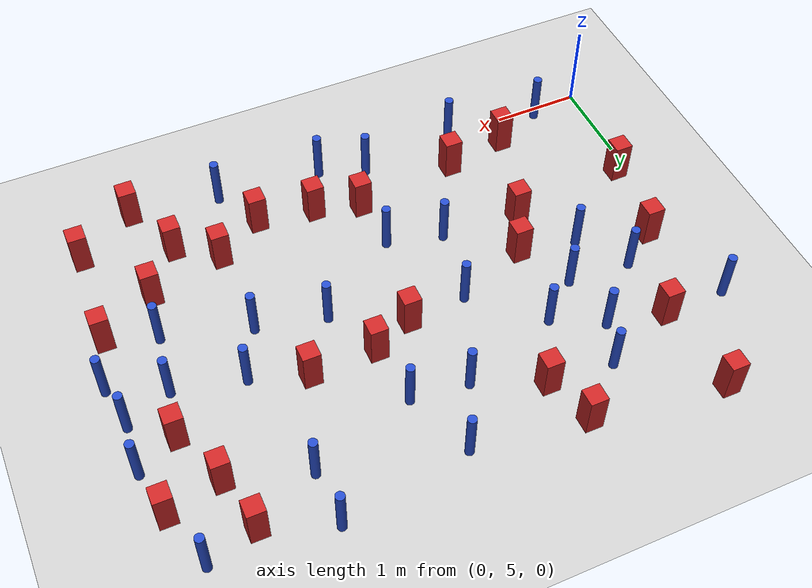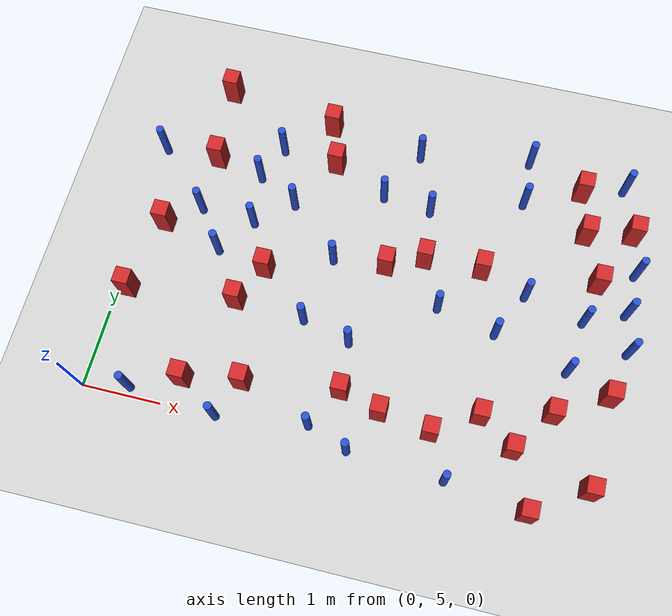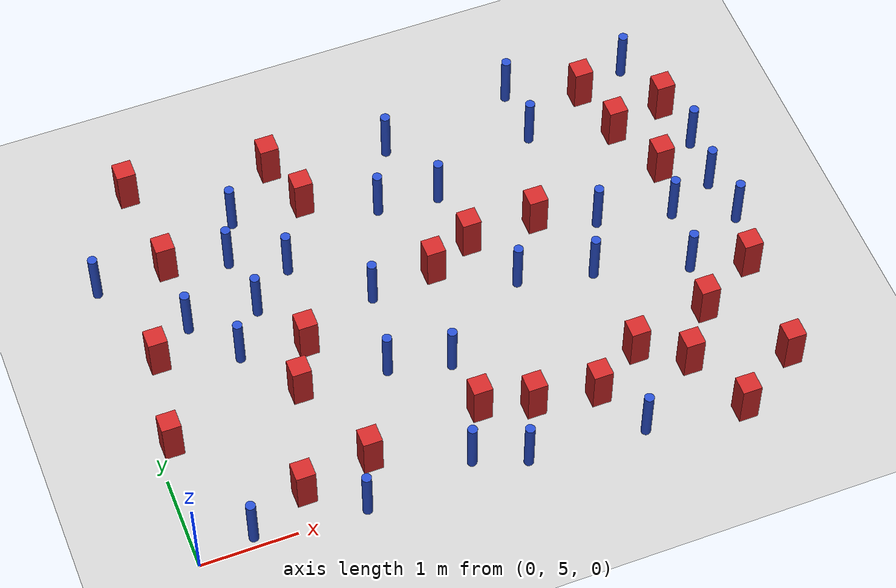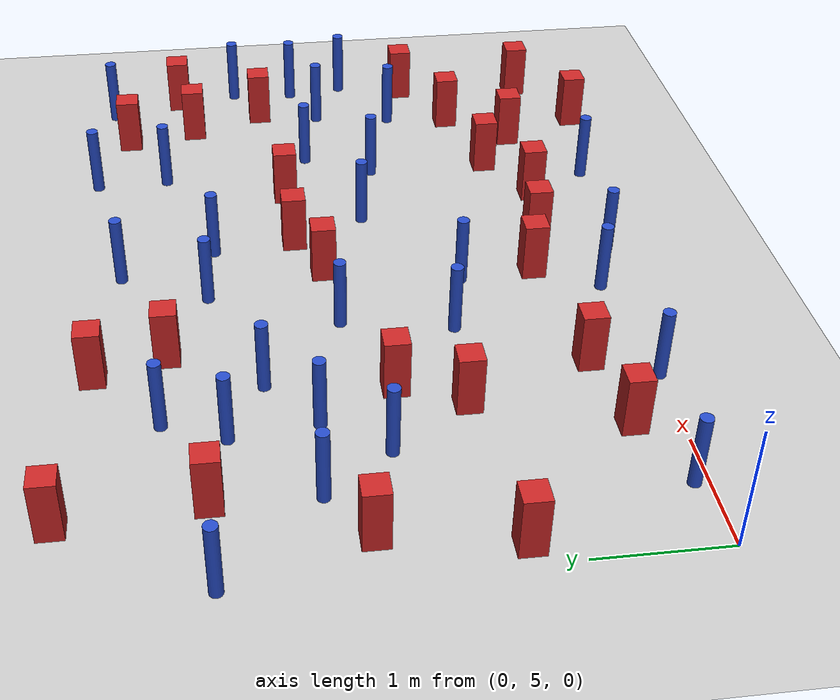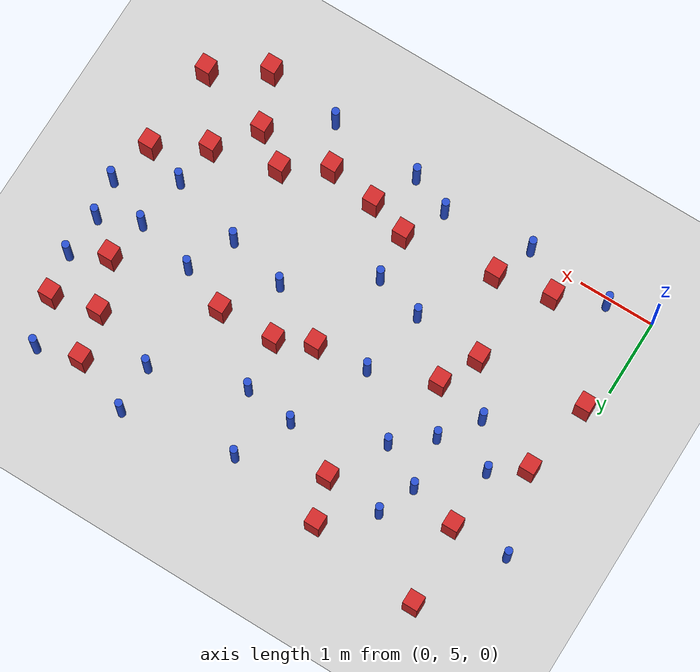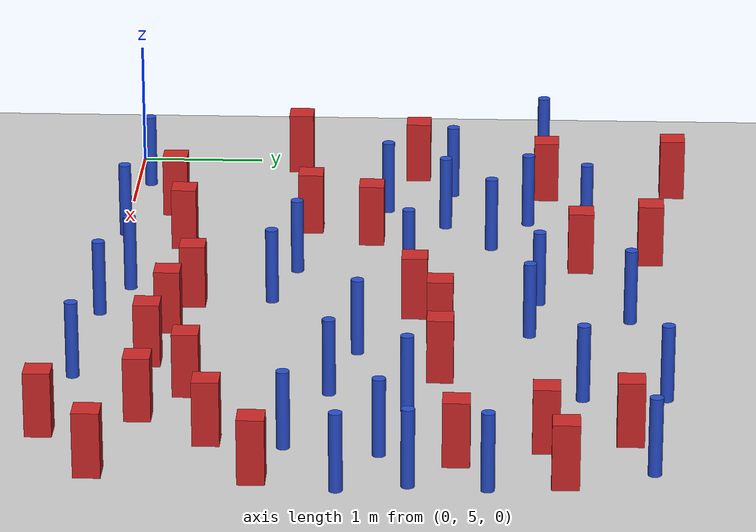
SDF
<sdf version="1.6">
 <world name="default">
  <model name="ground_plane">
   <static>1</static>
   <link name="link">
    <collision name="collision">
     <geometry><plane><normal>0 0 1</normal><size>100 100</size></plane></geometry>
     <surface><friction><ode><mu>100</mu><mu2>50</mu2></ode></friction></surface>
    </collision>
    <visual name="visual">
     <cast_shadows>0</cast_shadows>
     <geometry><plane><normal>0 0 1</normal><size>100 100</size></plane></geometry>
     <material>
      <ambient>1.0 1.0 1.0 1.0</ambient>
      <diffuse>0.8 0.8 0.8 1.0</diffuse>
      <specular>0.01 0.01 0.01 1.000000</specular>
     </material>
    </visual>
   </link>
  </model>
  <model name="square_post_obstacle6">
   <static>true</static>
   <pose>6.34076283947 8.5499948869 -6.11067671241e-07 -5.50515727128e-06 -8.79689657224e-07 2.37013304536e-05</pose>
   <link name="link">
    <pose>0 0 0.25 0 -0 0</pose>
    <inertial>
     <mass>100</mass>
     <inertia>
      <ixx>0.166667</ixx>
      <ixy>0</ixy>
      <ixz>0</ixz>
      <iyy>0.166667</iyy>
      <iyz>0</iyz>
      <izz>0.166667</izz>
     </inertia>
    </inertial>
    <collision name="collision"><geometry><box><size>.2 .2 .5</size></box></geometry></collision>
    <visual name="visual">
     <geometry><box><size>.2 .2 .5</size></box></geometry>
     <material>
      <script><name>Gazebo/Red</name><uri>file://media/materials/scripts/gazebo.material</uri></script>
     </material>
    </visual>
   </link>
  </model>
  <model name="pole_obstacle5">
   <static>true</static>
   <pose>0.745613405647 7.6392217286 -9.47619616065e-06 5.49618799737e-07 2.36310414065e-07 -1.55090534796e-07</pose>
   <link name="link">
    <pose>0 0 0.3 0 -0 0</pose>
    <inertial>
     <mass>1</mass>
     <inertia><ixx>0.145833</ixx><ixy>0</ixy><ixz>0</ixz><iyy>0.145833</iyy><iyz>0</iyz><izz>0.125</izz></inertia>
    </inertial>
    <collision name="collision">
     <geometry><cylinder><radius>0.05</radius><length>.6</length></cylinder></geometry>
    </collision>
    <visual name="visual">
     <geometry><cylinder><radius>0.05</radius><length>.6</length></cylinder></geometry>
     <material>
      <script><name>Gazebo/Blue</name><uri>file://media/materials/scripts/gazebo.material</uri></script>
     </material>
    </visual>
   </link>
  </model>
  <model name="square_post_obstacle11">
   <static>true</static>
   <pose>0.16159493465 6.35200790539 -6.11067671241e-07 -5.50515727128e-06 -8.79689657224e-07 2.37013304536e-05</pose>
   <link name="link">
    <pose>0 0 0.25 0 -0 0</pose>
    <inertial>
     <mass>100</mass>
     <inertia>
      <ixx>0.166667</ixx>
      <ixy>0</ixy>
      <ixz>0</ixz>
      <iyy>0.166667</iyy>
      <iyz>0</iyz>
      <izz>0.166667</izz>
     </inertia>
    </inertial>
    <collision name="collision"><geometry><box><size>.2 .2 .5</size></box></geometry></collision>
    <visual name="visual">
     <geometry><box><size>.2 .2 .5</size></box></geometry>
     <material>
      <script><name>Gazebo/Red</name><uri>file://media/materials/scripts/gazebo.material</uri></script>
     </material>
    </visual>
   </link>
  </model>
  <model name="square_post_obstacle12">
   <static>true</static>
   <pose>5.60025701304 9.02206502396 -6.11067671241e-07 -5.50515727128e-06 -8.79689657224e-07 2.37013304536e-05</pose>
   <link name="link">
    <pose>0 0 0.25 0 -0 0</pose>
    <inertial>
     <mass>100</mass>
     <inertia>
      <ixx>0.166667</ixx>
      <ixy>0</ixy>
      <ixz>0</ixz>
      <iyy>0.166667</iyy>
      <iyz>0</iyz>
      <izz>0.166667</izz>
     </inertia>
    </inertial>
    <collision name="collision"><geometry><box><size>.2 .2 .5</size></box></geometry></collision>
    <visual name="visual">
     <geometry><box><size>.2 .2 .5</size></box></geometry>
     <material>
      <script><name>Gazebo/Red</name><uri>file://media/materials/scripts/gazebo.material</uri></script>
     </material>
    </visual>
   </link>
  </model>
  <model name="square_post_obstacle30">
   <static>true</static>
   <pose>1.79112847933 7.00552808204 -6.11067671241e-07 -5.50515727128e-06 -8.79689657224e-07 2.37013304536e-05</pose>
   <link name="link">
    <pose>0 0 0.25 0 -0 0</pose>
    <inertial>
     <mass>100</mass>
     <inertia>
      <ixx>0.166667</ixx>
      <ixy>0</ixy>
      <ixz>0</ixz>
      <iyy>0.166667</iyy>
      <iyz>0</iyz>
      <izz>0.166667</izz>
     </inertia>
    </inertial>
    <collision name="collision"><geometry><box><size>.2 .2 .5</size></box></geometry></collision>
    <visual name="visual">
     <geometry><box><size>.2 .2 .5</size></box></geometry>
     <material>
      <script><name>Gazebo/Red</name><uri>file://media/materials/scripts/gazebo.material</uri></script>
     </material>
    </visual>
   </link>
  </model>
  <model name="pole_obstacle32">
   <static>true</static>
   <pose>3.39943327926 9.05926599301 -9.4761961606e-06 5.49618799729e-07 2.36310414e-07 -1.55090534824e-07</pose>
   <link name="link">
    <pose>0 0 0.3 0 -0 0</pose>
    <inertial>
     <mass>1</mass>
     <inertia><ixx>0.145833</ixx><ixy>0</ixy><ixz>0</ixz><iyy>0.145833</iyy><iyz>0</iyz><izz>0.125</izz></inertia>
    </inertial>
    <collision name="collision">
     <geometry><cylinder><radius>0.05</radius><length>.6</length></cylinder></geometry>
    </collision>
    <visual name="visual">
     <geometry><cylinder><radius>0.05</radius><length>.6</length></cylinder></geometry>
     <material>
      <script><name>Gazebo/Blue</name><uri>file://media/materials/scripts/gazebo.material</uri></script>
     </material>
    </visual>
   </link>
  </model>
  <model name="pole_obstacle33">
   <static>true</static>
   <pose>0.015821319736 8.38703752953 -9.47619616065e-06 5.49618799737e-07 2.36310414039e-07 -1.55090534813e-07</pose>
   <link name="link">
    <pose>0 0 0.3 0 -0 0</pose>
    <inertial>
     <mass>1</mass>
     <inertia><ixx>0.145833</ixx><ixy>0</ixy><ixz>0</ixz><iyy>0.145833</iyy><iyz>0</iyz><izz>0.125</izz></inertia>
    </inertial>
    <collision name="collision">
     <geometry><cylinder><radius>0.05</radius><length>.6</length></cylinder></geometry>
    </collision>
    <visual name="visual">
     <geometry><cylinder><radius>0.05</radius><length>.6</length></cylinder></geometry>
     <material>
      <script><name>Gazebo/Blue</name><uri>file://media/materials/scripts/gazebo.material</uri></script>
     </material>
    </visual>
   </link>
  </model>
  <model name="pole_obstacle34">
   <static>true</static>
   <pose>4.87713090371 8.68399019219 -9.47619616065e-06 5.49618799737e-07 2.36310414065e-07 -1.55090534796e-07</pose>
   <link name="link">
    <pose>0 0 0.3 0 -0 0</pose>
    <inertial>
     <mass>1</mass>
     <inertia><ixx>0.145833</ixx><ixy>0</ixy><ixz>0</ixz><iyy>0.145833</iyy><iyz>0</iyz><izz>0.125</izz></inertia>
    </inertial>
    <collision name="collision">
     <geometry><cylinder><radius>0.05</radius><length>.6</length></cylinder></geometry>
    </collision>
    <visual name="visual">
     <geometry><cylinder><radius>0.05</radius><length>.6</length></cylinder></geometry>
     <material>
      <script><name>Gazebo/Blue</name><uri>file://media/materials/scripts/gazebo.material</uri></script>
     </material>
    </visual>
   </link>
  </model>
  <model name="pole_obstacle44">
   <static>true</static>
   <pose>3.69394878229 8.28498594735 -9.4761961606e-06 5.49618799729e-07 2.36310414e-07 -1.55090534824e-07</pose>
   <link name="link">
    <pose>0 0 0.3 0 -0 0</pose>
    <inertial>
     <mass>1</mass>
     <inertia><ixx>0.145833</ixx><ixy>0</ixy><ixz>0</ixz><iyy>0.145833</iyy><iyz>0</iyz><izz>0.125</izz></inertia>
    </inertial>
    <collision name="collision">
     <geometry><cylinder><radius>0.05</radius><length>.6</length></cylinder></geometry>
    </collision>
    <visual name="visual">
     <geometry><cylinder><radius>0.05</radius><length>.6</length></cylinder></geometry>
     <material>
      <script><name>Gazebo/Blue</name><uri>file://media/materials/scripts/gazebo.material</uri></script>
     </material>
    </visual>
   </link>
  </model>
  <model name="square_post_obstacle44">
   <static>true</static>
   <pose>5.29365159109 5.43245693541 -6.11067671241e-07 -5.50515727128e-06 -8.79689657224e-07 2.37013304536e-05</pose>
   <link name="link">
    <pose>0 0 0.25 0 -0 0</pose>
    <inertial>
     <mass>100</mass>
     <inertia>
      <ixx>0.166667</ixx>
      <ixy>0</ixy>
      <ixz>0</ixz>
      <iyy>0.166667</iyy>
      <iyz>0</iyz>
      <izz>0.166667</izz>
     </inertia>
    </inertial>
    <collision name="collision"><geometry><box><size>.2 .2 .5</size></box></geometry></collision>
    <visual name="visual">
     <geometry><box><size>.2 .2 .5</size></box></geometry>
     <material>
      <script><name>Gazebo/Red</name><uri>file://media/materials/scripts/gazebo.material</uri></script>
     </material>
    </visual>
   </link>
  </model>
  <model name="pole_obstacle46">
   <static>true</static>
   <pose>6.15024839324 9.18393553257 -9.47619616065e-06 5.49618799737e-07 2.36310414065e-07 -1.55090534796e-07</pose>
   <link name="link">
    <pose>0 0 0.3 0 -0 0</pose>
    <inertial>
     <mass>1</mass>
     <inertia><ixx>0.145833</ixx><ixy>0</ixy><ixz>0</ixz><iyy>0.145833</iyy><iyz>0</iyz><izz>0.125</izz></inertia>
    </inertial>
    <collision name="collision">
     <geometry><cylinder><radius>0.05</radius><length>.6</length></cylinder></geometry>
    </collision>
    <visual name="visual">
     <geometry><cylinder><radius>0.05</radius><length>.6</length></cylinder></geometry>
     <material>
      <script><name>Gazebo/Blue</name><uri>file://media/materials/scripts/gazebo.material</uri></script>
     </material>
    </visual>
   </link>
  </model>
  <model name="square_post_obstacle50">
   <static>true</static>
   <pose>2.14917220712 9.23992868707 -6.11067671241e-07 -5.50515727128e-06 -8.79689657224e-07 2.37013304536e-05</pose>
   <link name="link">
    <pose>0 0 0.25 0 -0 0</pose>
    <inertial>
     <mass>100</mass>
     <inertia>
      <ixx>0.166667</ixx>
      <ixy>0</ixy>
      <ixz>0</ixz>
      <iyy>0.166667</iyy>
      <iyz>0</iyz>
      <izz>0.166667</izz>
     </inertia>
    </inertial>
    <collision name="collision"><geometry><box><size>.2 .2 .5</size></box></geometry></collision>
    <visual name="visual">
     <geometry><box><size>.2 .2 .5</size></box></geometry>
     <material>
      <script><name>Gazebo/Red</name><uri>file://media/materials/scripts/gazebo.material</uri></script>
     </material>
    </visual>
   </link>
  </model>
  <model name="square_post_obstacle57">
   <static>true</static>
   <pose>5.99296609151 7.77150757384 -6.11067671241e-07 -5.50515727128e-06 -8.79689657224e-07 2.37013304536e-05</pose>
   <link name="link">
    <pose>0 0 0.25 0 -0 0</pose>
    <inertial>
     <mass>100</mass>
     <inertia>
      <ixx>0.166667</ixx>
      <ixy>0</ixy>
      <ixz>0</ixz>
      <iyy>0.166667</iyy>
      <iyz>0</iyz>
      <izz>0.166667</izz>
     </inertia>
    </inertial>
    <collision name="collision"><geometry><box><size>.2 .2 .5</size></box></geometry></collision>
    <visual name="visual">
     <geometry><box><size>.2 .2 .5</size></box></geometry>
     <material>
      <script><name>Gazebo/Red</name><uri>file://media/materials/scripts/gazebo.material</uri></script>
     </material>
    </visual>
   </link>
  </model>
  <model name="pole_obstacle64">
   <static>true</static>
   <pose>2.61488511365 7.32648292355 -9.47619616065e-06 5.49618799738e-07 2.3631041406e-07 -1.55090534801e-07</pose>
   <link name="link">
    <pose>0 0 0.3 0 -0 0</pose>
    <inertial>
     <mass>1</mass>
     <inertia><ixx>0.145833</ixx><ixy>0</ixy><ixz>0</ixz><iyy>0.145833</iyy><iyz>0</iyz><izz>0.125</izz></inertia>
    </inertial>
    <collision name="collision">
     <geometry><cylinder><radius>0.05</radius><length>.6</length></cylinder></geometry>
    </collision>
    <visual name="visual">
     <geometry><cylinder><radius>0.05</radius><length>.6</length></cylinder></geometry>
     <material>
      <script><name>Gazebo/Blue</name><uri>file://media/materials/scripts/gazebo.material</uri></script>
     </material>
    </visual>
   </link>
  </model>
  <model name="pole_obstacle67">
   <static>true</static>
   <pose>0.584177188709 5.10836719487 -9.47619616065e-06 5.49618799737e-07 2.36310414065e-07 -1.55090534796e-07</pose>
   <link name="link">
    <pose>0 0 0.3 0 -0 0</pose>
    <inertial>
     <mass>1</mass>
     <inertia><ixx>0.145833</ixx><ixy>0</ixy><ixz>0</ixz><iyy>0.145833</iyy><iyz>0</iyz><izz>0.125</izz></inertia>
    </inertial>
    <collision name="collision">
     <geometry><cylinder><radius>0.05</radius><length>.6</length></cylinder></geometry>
    </collision>
    <visual name="visual">
     <geometry><cylinder><radius>0.05</radius><length>.6</length></cylinder></geometry>
     <material>
      <script><name>Gazebo/Blue</name><uri>file://media/materials/scripts/gazebo.material</uri></script>
     </material>
    </visual>
   </link>
  </model>
  <model name="square_post_obstacle74">
   <static>true</static>
   <pose>4.29895245596 5.41531932441 -6.11067671241e-07 -5.50515727128e-06 -8.79689657224e-07 2.37013304536e-05</pose>
   <link name="link">
    <pose>0 0 0.25 0 -0 0</pose>
    <inertial>
     <mass>100</mass>
     <inertia>
      <ixx>0.166667</ixx>
      <ixy>0</ixy>
      <ixz>0</ixz>
      <iyy>0.166667</iyy>
      <iyz>0</iyz>
      <izz>0.166667</izz>
     </inertia>
    </inertial>
    <collision name="collision"><geometry><box><size>.2 .2 .5</size></box></geometry></collision>
    <visual name="visual">
     <geometry><box><size>.2 .2 .5</size></box></geometry>
     <material>
      <script><name>Gazebo/Red</name><uri>file://media/materials/scripts/gazebo.material</uri></script>
     </material>
    </visual>
   </link>
  </model>
  <model name="square_post_obstacle81">
   <static>true</static>
   <pose>4.84512414721 5.7495159852 -6.11067671241e-07 -5.50515727128e-06 -8.79689657224e-07 2.37013304536e-05</pose>
   <link name="link">
    <pose>0 0 0.25 0 -0 0</pose>
    <inertial>
     <mass>100</mass>
     <inertia>
      <ixx>0.166667</ixx>
      <ixy>0</ixy>
      <ixz>0</ixz>
      <iyy>0.166667</iyy>
      <iyz>0</iyz>
      <izz>0.166667</izz>
     </inertia>
    </inertial>
    <collision name="collision"><geometry><box><size>.2 .2 .5</size></box></geometry></collision>
    <visual name="visual">
     <geometry><box><size>.2 .2 .5</size></box></geometry>
     <material>
      <script><name>Gazebo/Red</name><uri>file://media/materials/scripts/gazebo.material</uri></script>
     </material>
    </visual>
   </link>
  </model>
  <model name="pole_obstacle94">
   <static>true</static>
   <pose>4.06358419919 6.98536074071 -9.47619616065e-06 5.49618799737e-07 2.36310414037e-07 -1.55090534814e-07</pose>
   <link name="link">
    <pose>0 0 0.3 0 -0 0</pose>
    <inertial>
     <mass>1</mass>
     <inertia><ixx>0.145833</ixx><ixy>0</ixy><ixz>0</ixz><iyy>0.145833</iyy><iyz>0</iyz><izz>0.125</izz></inertia>
    </inertial>
    <collision name="collision">
     <geometry><cylinder><radius>0.05</radius><length>.6</length></cylinder></geometry>
    </collision>
    <visual name="visual">
     <geometry><cylinder><radius>0.05</radius><length>.6</length></cylinder></geometry>
     <material>
      <script><name>Gazebo/Blue</name><uri>file://media/materials/scripts/gazebo.material</uri></script>
     </material>
    </visual>
   </link>
  </model>
  <model name="pole_obstacle98">
   <static>true</static>
   <pose>4.83447140168 6.80653209014 -9.47619616065e-06 5.49618799737e-07 2.36310414037e-07 -1.55090534814e-07</pose>
   <link name="link">
    <pose>0 0 0.3 0 -0 0</pose>
    <inertial>
     <mass>1</mass>
     <inertia><ixx>0.145833</ixx><ixy>0</ixy><ixz>0</ixz><iyy>0.145833</iyy><iyz>0</iyz><izz>0.125</izz></inertia>
    </inertial>
    <collision name="collision">
     <geometry><cylinder><radius>0.05</radius><length>.6</length></cylinder></geometry>
    </collision>
    <visual name="visual">
     <geometry><cylinder><radius>0.05</radius><length>.6</length></cylinder></geometry>
     <material>
      <script><name>Gazebo/Blue</name><uri>file://media/materials/scripts/gazebo.material</uri></script>
     </material>
    </visual>
   </link>
  </model>
  <model name="pole_obstacle104">
   <static>true</static>
   <pose>1.12483648178 7.11594691428 -9.47619616065e-06 5.49618799737e-07 2.36310414061e-07 -1.550905348e-07</pose>
   <link name="link">
    <pose>0 0 0.3 0 -0 0</pose>
    <inertial>
     <mass>1</mass>
     <inertia><ixx>0.145833</ixx><ixy>0</ixy><ixz>0</ixz><iyy>0.145833</iyy><iyz>0</iyz><izz>0.125</izz></inertia>
    </inertial>
    <collision name="collision">
     <geometry><cylinder><radius>0.05</radius><length>.6</length></cylinder></geometry>
    </collision>
    <visual name="visual">
     <geometry><cylinder><radius>0.05</radius><length>.6</length></cylinder></geometry>
     <material>
      <script><name>Gazebo/Blue</name><uri>file://media/materials/scripts/gazebo.material</uri></script>
     </material>
    </visual>
   </link>
  </model>
  <model name="square_post_obstacle96">
   <static>true</static>
   <pose>1.54952865831 6.50310017819 -6.11067671241e-07 -5.50515727128e-06 -8.79689657224e-07 2.37013304536e-05</pose>
   <link name="link">
    <pose>0 0 0.25 0 -0 0</pose>
    <inertial>
     <mass>100</mass>
     <inertia>
      <ixx>0.166667</ixx>
      <ixy>0</ixy>
      <ixz>0</ixz>
      <iyy>0.166667</iyy>
      <iyz>0</iyz>
      <izz>0.166667</izz>
     </inertia>
    </inertial>
    <collision name="collision"><geometry><box><size>.2 .2 .5</size></box></geometry></collision>
    <visual name="visual">
     <geometry><box><size>.2 .2 .5</size></box></geometry>
     <material>
      <script><name>Gazebo/Red</name><uri>file://media/materials/scripts/gazebo.material</uri></script>
     </material>
    </visual>
   </link>
  </model>
  <model name="pole_obstacle111">
   <static>true</static>
   <pose>5.11794263537 7.39386304942 -9.47619616065e-06 5.49618799737e-07 2.36310414037e-07 -1.55090534814e-07</pose>
   <link name="link">
    <pose>0 0 0.3 0 -0 0</pose>
    <inertial>
     <mass>1</mass>
     <inertia><ixx>0.145833</ixx><ixy>0</ixy><ixz>0</ixz><iyy>0.145833</iyy><iyz>0</iyz><izz>0.125</izz></inertia>
    </inertial>
    <collision name="collision">
     <geometry><cylinder><radius>0.05</radius><length>.6</length></cylinder></geometry>
    </collision>
    <visual name="visual">
     <geometry><cylinder><radius>0.05</radius><length>.6</length></cylinder></geometry>
     <material>
      <script><name>Gazebo/Blue</name><uri>file://media/materials/scripts/gazebo.material</uri></script>
     </material>
    </visual>
   </link>
  </model>
  <model name="pole_obstacle115">
   <static>true</static>
   <pose>1.38260173117 8.26328181564 -9.47619616065e-06 5.49618799737e-07 2.36310414046e-07 -1.55090534809e-07</pose>
   <link name="link">
    <pose>0 0 0.3 0 -0 0</pose>
    <inertial>
     <mass>1</mass>
     <inertia><ixx>0.145833</ixx><ixy>0</ixy><ixz>0</ixz><iyy>0.145833</iyy><iyz>0</iyz><izz>0.125</izz></inertia>
    </inertial>
    <collision name="collision">
     <geometry><cylinder><radius>0.05</radius><length>.6</length></cylinder></geometry>
    </collision>
    <visual name="visual">
     <geometry><cylinder><radius>0.05</radius><length>.6</length></cylinder></geometry>
     <material>
      <script><name>Gazebo/Blue</name><uri>file://media/materials/scripts/gazebo.material</uri></script>
     </material>
    </visual>
   </link>
  </model>
  <model name="square_post_obstacle102">
   <static>true</static>
   <pose>0.753346790967 8.40954275333 -6.11067671241e-07 -5.50515727128e-06 -8.79689657224e-07 2.37013304536e-05</pose>
   <link name="link">
    <pose>0 0 0.25 0 -0 0</pose>
    <inertial>
     <mass>100</mass>
     <inertia>
      <ixx>0.166667</ixx>
      <ixy>0</ixy>
      <ixz>0</ixz>
      <iyy>0.166667</iyy>
      <iyz>0</iyz>
      <izz>0.166667</izz>
     </inertia>
    </inertial>
    <collision name="collision"><geometry><box><size>.2 .2 .5</size></box></geometry></collision>
    <visual name="visual">
     <geometry><box><size>.2 .2 .5</size></box></geometry>
     <material>
      <script><name>Gazebo/Red</name><uri>file://media/materials/scripts/gazebo.material</uri></script>
     </material>
    </visual>
   </link>
  </model>
  <model name="square_post_obstacle105">
   <static>true</static>
   <pose>6.26525733336 5.16273116097 -6.11067671241e-07 -5.50515727128e-06 -8.79689657224e-07 2.37013304536e-05</pose>
   <link name="link">
    <pose>0 0 0.25 0 -0 0</pose>
    <inertial>
     <mass>100</mass>
     <inertia>
      <ixx>0.166667</ixx>
      <ixy>0</ixy>
      <ixz>0</ixz>
      <iyy>0.166667</iyy>
      <iyz>0</iyz>
      <izz>0.166667</izz>
     </inertia>
    </inertial>
    <collision name="collision"><geometry><box><size>.2 .2 .5</size></box></geometry></collision>
    <visual name="visual">
     <geometry><box><size>.2 .2 .5</size></box></geometry>
     <material>
      <script><name>Gazebo/Red</name><uri>file://media/materials/scripts/gazebo.material</uri></script>
     </material>
    </visual>
   </link>
  </model>
  <model name="square_post_obstacle106">
   <static>true</static>
   <pose>3.13021972057 5.66644149737 -6.11067671241e-07 -5.50515727128e-06 -8.79689657224e-07 2.37013304536e-05</pose>
   <link name="link">
    <pose>0 0 0.25 0 -0 0</pose>
    <inertial>
     <mass>100</mass>
     <inertia>
      <ixx>0.166667</ixx>
      <ixy>0</ixy>
      <ixz>0</ixz>
      <iyy>0.166667</iyy>
      <iyz>0</iyz>
      <izz>0.166667</izz>
     </inertia>
    </inertial>
    <collision name="collision"><geometry><box><size>.2 .2 .5</size></box></geometry></collision>
    <visual name="visual">
     <geometry><box><size>.2 .2 .5</size></box></geometry>
     <material>
      <script><name>Gazebo/Red</name><uri>file://media/materials/scripts/gazebo.material</uri></script>
     </material>
    </visual>
   </link>
  </model>
  <model name="square_post_obstacle112">
   <static>true</static>
   <pose>6.3389014881 6.33179369499 -6.11067671241e-07 -5.50515727128e-06 -8.79689657224e-07 2.37013304536e-05</pose>
   <link name="link">
    <pose>0 0 0.25 0 -0 0</pose>
    <inertial>
     <mass>100</mass>
     <inertia>
      <ixx>0.166667</ixx>
      <ixy>0</ixy>
      <ixz>0</ixz>
      <iyy>0.166667</iyy>
      <iyz>0</iyz>
      <izz>0.166667</izz>
     </inertia>
    </inertial>
    <collision name="collision"><geometry><box><size>.2 .2 .5</size></box></geometry></collision>
    <visual name="visual">
     <geometry><box><size>.2 .2 .5</size></box></geometry>
     <material>
      <script><name>Gazebo/Red</name><uri>file://media/materials/scripts/gazebo.material</uri></script>
     </material>
    </visual>
   </link>
  </model>
  <model name="pole_obstacle139">
   <static>true</static>
   <pose>1.71141079749 5.0033650352 -9.47619616065e-06 5.49618799737e-07 2.36310414061e-07 -1.550905348e-07</pose>
   <link name="link">
    <pose>0 0 0.3 0 -0 0</pose>
    <inertial>
     <mass>1</mass>
     <inertia><ixx>0.145833</ixx><ixy>0</ixy><ixz>0</ixz><iyy>0.145833</iyy><iyz>0</iyz><izz>0.125</izz></inertia>
    </inertial>
    <collision name="collision">
     <geometry><cylinder><radius>0.05</radius><length>.6</length></cylinder></geometry>
    </collision>
    <visual name="visual">
     <geometry><cylinder><radius>0.05</radius><length>.6</length></cylinder></geometry>
     <material>
      <script><name>Gazebo/Blue</name><uri>file://media/materials/scripts/gazebo.material</uri></script>
     </material>
    </visual>
   </link>
  </model>
  <model name="pole_obstacle141">
   <static>true</static>
   <pose>3.05214723601 8.35594033909 -9.4761961606e-06 5.49618799729e-07 2.36310414e-07 -1.55090534824e-07</pose>
   <link name="link">
    <pose>0 0 0.3 0 -0 0</pose>
    <inertial>
     <mass>1</mass>
     <inertia><ixx>0.145833</ixx><ixy>0</ixy><ixz>0</ixz><iyy>0.145833</iyy><iyz>0</iyz><izz>0.125</izz></inertia>
    </inertial>
    <collision name="collision">
     <geometry><cylinder><radius>0.05</radius><length>.6</length></cylinder></geometry>
    </collision>
    <visual name="visual">
     <geometry><cylinder><radius>0.05</radius><length>.6</length></cylinder></geometry>
     <material>
      <script><name>Gazebo/Blue</name><uri>file://media/materials/scripts/gazebo.material</uri></script>
     </material>
    </visual>
   </link>
  </model>
  <model name="square_post_obstacle127">
   <static>true</static>
   <pose>3.64627798604 5.51369097277 -6.11067671241e-07 -5.50515727128e-06 -8.79689657224e-07 2.37013304536e-05</pose>
   <link name="link">
    <pose>0 0 0.25 0 -0 0</pose>
    <inertial>
     <mass>100</mass>
     <inertia>
      <ixx>0.166667</ixx>
      <ixy>0</ixy>
      <ixz>0</ixz>
      <iyy>0.166667</iyy>
      <iyz>0</iyz>
      <izz>0.166667</izz>
     </inertia>
    </inertial>
    <collision name="collision"><geometry><box><size>.2 .2 .5</size></box></geometry></collision>
    <visual name="visual">
     <geometry><box><size>.2 .2 .5</size></box></geometry>
     <material>
      <script><name>Gazebo/Red</name><uri>file://media/materials/scripts/gazebo.material</uri></script>
     </material>
    </visual>
   </link>
  </model>
  <model name="square_post_obstacle129">
   <static>true</static>
   <pose>1.92116880631 5.50191823583 -6.11067671241e-07 -5.50515727128e-06 -8.79689657224e-07 2.37013304536e-05</pose>
   <link name="link">
    <pose>0 0 0.25 0 -0 0</pose>
    <inertial>
     <mass>100</mass>
     <inertia>
      <ixx>0.166667</ixx>
      <ixy>0</ixy>
      <ixz>0</ixz>
      <iyy>0.166667</iyy>
      <iyz>0</iyz>
      <izz>0.166667</izz>
     </inertia>
    </inertial>
    <collision name="collision"><geometry><box><size>.2 .2 .5</size></box></geometry></collision>
    <visual name="visual">
     <geometry><box><size>.2 .2 .5</size></box></geometry>
     <material>
      <script><name>Gazebo/Red</name><uri>file://media/materials/scripts/gazebo.material</uri></script>
     </material>
    </visual>
   </link>
  </model>
  <model name="square_post_obstacle130">
   <static>true</static>
   <pose>4.5121969407 7.62203635582 -6.11067671241e-07 -5.50515727128e-06 -8.79689657224e-07 2.37013304536e-05</pose>
   <link name="link">
    <pose>0 0 0.25 0 -0 0</pose>
    <inertial>
     <mass>100</mass>
     <inertia>
      <ixx>0.166667</ixx>
      <ixy>0</ixy>
      <ixz>0</ixz>
      <iyy>0.166667</iyy>
      <iyz>0</iyz>
      <izz>0.166667</izz>
     </inertia>
    </inertial>
    <collision name="collision"><geometry><box><size>.2 .2 .5</size></box></geometry></collision>
    <visual name="visual">
     <geometry><box><size>.2 .2 .5</size></box></geometry>
     <material>
      <script><name>Gazebo/Red</name><uri>file://media/materials/scripts/gazebo.material</uri></script>
     </material>
    </visual>
   </link>
  </model>
  <model name="square_post_obstacle135">
   <static>true</static>
   <pose>3.3008069111 7.39525696884 -6.11067671241e-07 -5.50515727128e-06 -8.79689657224e-07 2.37013304536e-05</pose>
   <link name="link">
    <pose>0 0 0.25 0 -0 0</pose>
    <inertial>
     <mass>100</mass>
     <inertia>
      <ixx>0.166667</ixx>
      <ixy>0</ixy>
      <ixz>0</ixz>
      <iyy>0.166667</iyy>
      <iyz>0</iyz>
      <izz>0.166667</izz>
     </inertia>
    </inertial>
    <collision name="collision"><geometry><box><size>.2 .2 .5</size></box></geometry></collision>
    <visual name="visual">
     <geometry><box><size>.2 .2 .5</size></box></geometry>
     <material>
      <script><name>Gazebo/Red</name><uri>file://media/materials/scripts/gazebo.material</uri></script>
     </material>
    </visual>
   </link>
  </model>
  <model name="pole_obstacle152">
   <static>true</static>
   <pose>6.4070583276 7.43870535219 -9.47619616065e-06 5.49618799737e-07 2.36310414037e-07 -1.55090534814e-07</pose>
   <link name="link">
    <pose>0 0 0.3 0 -0 0</pose>
    <inertial>
     <mass>1</mass>
     <inertia><ixx>0.145833</ixx><ixy>0</ixy><ixz>0</ixz><iyy>0.145833</iyy><iyz>0</iyz><izz>0.125</izz></inertia>
    </inertial>
    <collision name="collision">
     <geometry><cylinder><radius>0.05</radius><length>.6</length></cylinder></geometry>
    </collision>
    <visual name="visual">
     <geometry><cylinder><radius>0.05</radius><length>.6</length></cylinder></geometry>
     <material>
      <script><name>Gazebo/Blue</name><uri>file://media/materials/scripts/gazebo.material</uri></script>
     </material>
    </visual>
   </link>
  </model>
  <model name="square_post_obstacle145">
   <static>true</static>
   <pose>1.19332104323 5.37194114232 -6.11067671241e-07 -5.50515727128e-06 -8.79689657224e-07 2.37013304536e-05</pose>
   <link name="link">
    <pose>0 0 0.25 0 -0 0</pose>
    <inertial>
     <mass>100</mass>
     <inertia>
      <ixx>0.166667</ixx>
      <ixy>0</ixy>
      <ixz>0</ixz>
      <iyy>0.166667</iyy>
      <iyz>0</iyz>
      <izz>0.166667</izz>
     </inertia>
    </inertial>
    <collision name="collision"><geometry><box><size>.2 .2 .5</size></box></geometry></collision>
    <visual name="visual">
     <geometry><box><size>.2 .2 .5</size></box></geometry>
     <material>
      <script><name>Gazebo/Red</name><uri>file://media/materials/scripts/gazebo.material</uri></script>
     </material>
    </visual>
   </link>
  </model>
  <model name="square_post_obstacle158">
   <static>true</static>
   <pose>0.337536891399 7.34308555127 -6.11067671241e-07 -5.50515727128e-06 -8.79689657224e-07 2.37013304536e-05</pose>
   <link name="link">
    <pose>0 0 0.25 0 -0 0</pose>
    <inertial>
     <mass>100</mass>
     <inertia>
      <ixx>0.166667</ixx>
      <ixy>0</ixy>
      <ixz>0</ixz>
      <iyy>0.166667</iyy>
      <iyz>0</iyz>
      <izz>0.166667</izz>
     </inertia>
    </inertial>
    <collision name="collision"><geometry><box><size>.2 .2 .5</size></box></geometry></collision>
    <visual name="visual">
     <geometry><box><size>.2 .2 .5</size></box></geometry>
     <material>
      <script><name>Gazebo/Red</name><uri>file://media/materials/scripts/gazebo.material</uri></script>
     </material>
    </visual>
   </link>
  </model>
  <model name="square_post_obstacle168">
   <static>true</static>
   <pose>5.69913256489 5.96470200196 -6.11067671241e-07 -5.50515727128e-06 -8.79689657224e-07 2.37013304536e-05</pose>
   <link name="link">
    <pose>0 0 0.25 0 -0 0</pose>
    <inertial>
     <mass>100</mass>
     <inertia>
      <ixx>0.166667</ixx>
      <ixy>0</ixy>
      <ixz>0</ixz>
      <iyy>0.166667</iyy>
      <iyz>0</iyz>
      <izz>0.166667</izz>
     </inertia>
    </inertial>
    <collision name="collision"><geometry><box><size>.2 .2 .5</size></box></geometry></collision>
    <visual name="visual">
     <geometry><box><size>.2 .2 .5</size></box></geometry>
     <material>
      <script><name>Gazebo/Red</name><uri>file://media/materials/scripts/gazebo.material</uri></script>
     </material>
    </visual>
   </link>
  </model>
  <model name="pole_obstacle182">
   <static>true</static>
   <pose>5.79089724204 6.52319174007 -9.47619616065e-06 5.49618799737e-07 2.36310414037e-07 -1.55090534814e-07</pose>
   <link name="link">
    <pose>0 0 0.3 0 -0 0</pose>
    <inertial>
     <mass>1</mass>
     <inertia><ixx>0.145833</ixx><ixy>0</ixy><ixz>0</ixz><iyy>0.145833</iyy><iyz>0</iyz><izz>0.125</izz></inertia>
    </inertial>
    <collision name="collision">
     <geometry><cylinder><radius>0.05</radius><length>.6</length></cylinder></geometry>
    </collision>
    <visual name="visual">
     <geometry><cylinder><radius>0.05</radius><length>.6</length></cylinder></geometry>
     <material>
      <script><name>Gazebo/Blue</name><uri>file://media/materials/scripts/gazebo.material</uri></script>
     </material>
    </visual>
   </link>
  </model>
  <model name="pole_obstacle183">
   <static>true</static>
   <pose>2.85007016911 5.14929003676 -9.47619616065e-06 5.49618799738e-07 2.3631041406e-07 -1.55090534801e-07</pose>
   <link name="link">
    <pose>0 0 0.3 0 -0 0</pose>
    <inertial>
     <mass>1</mass>
     <inertia><ixx>0.145833</ixx><ixy>0</ixy><ixz>0</ixz><iyy>0.145833</iyy><iyz>0</iyz><izz>0.125</izz></inertia>
    </inertial>
    <collision name="collision">
     <geometry><cylinder><radius>0.05</radius><length>.6</length></cylinder></geometry>
    </collision>
    <visual name="visual">
     <geometry><cylinder><radius>0.05</radius><length>.6</length></cylinder></geometry>
     <material>
      <script><name>Gazebo/Blue</name><uri>file://media/materials/scripts/gazebo.material</uri></script>
     </material>
    </visual>
   </link>
  </model>
  <model name="square_post_obstacle175">
   <static>true</static>
   <pose>5.73870534506 8.41274667154 -6.11067671241e-07 -5.50515727128e-06 -8.79689657224e-07 2.37013304536e-05</pose>
   <link name="link">
    <pose>0 0 0.25 0 -0 0</pose>
    <inertial>
     <mass>100</mass>
     <inertia>
      <ixx>0.166667</ixx>
      <ixy>0</ixy>
      <ixz>0</ixz>
      <iyy>0.166667</iyy>
      <iyz>0</iyz>
      <izz>0.166667</izz>
     </inertia>
    </inertial>
    <collision name="collision"><geometry><box><size>.2 .2 .5</size></box></geometry></collision>
    <visual name="visual">
     <geometry><box><size>.2 .2 .5</size></box></geometry>
     <material>
      <script><name>Gazebo/Red</name><uri>file://media/materials/scripts/gazebo.material</uri></script>
     </material>
    </visual>
   </link>
  </model>
  <model name="square_post_obstacle182">
   <static>true</static>
   <pose>3.7673544865 7.6019083861 -6.11067671241e-07 -5.50515727128e-06 -8.79689657224e-07 2.37013304536e-05</pose>
   <link name="link">
    <pose>0 0 0.25 0 -0 0</pose>
    <inertial>
     <mass>100</mass>
     <inertia>
      <ixx>0.166667</ixx>
      <ixy>0</ixy>
      <ixz>0</ixz>
      <iyy>0.166667</iyy>
      <iyz>0</iyz>
      <izz>0.166667</izz>
     </inertia>
    </inertial>
    <collision name="collision"><geometry><box><size>.2 .2 .5</size></box></geometry></collision>
    <visual name="visual">
     <geometry><box><size>.2 .2 .5</size></box></geometry>
     <material>
      <script><name>Gazebo/Red</name><uri>file://media/materials/scripts/gazebo.material</uri></script>
     </material>
    </visual>
   </link>
  </model>
  <model name="square_post_obstacle184">
   <static>true</static>
   <pose>2.32748396425 8.68462599959 -6.11067671241e-07 -5.50515727128e-06 -8.79689657224e-07 2.37013304536e-05</pose>
   <link name="link">
    <pose>0 0 0.25 0 -0 0</pose>
    <inertial>
     <mass>100</mass>
     <inertia>
      <ixx>0.166667</ixx>
      <ixy>0</ixy>
      <ixz>0</ixz>
      <iyy>0.166667</iyy>
      <iyz>0</iyz>
      <izz>0.166667</izz>
     </inertia>
    </inertial>
    <collision name="collision"><geometry><box><size>.2 .2 .5</size></box></geometry></collision>
    <visual name="visual">
     <geometry><box><size>.2 .2 .5</size></box></geometry>
     <material>
      <script><name>Gazebo/Red</name><uri>file://media/materials/scripts/gazebo.material</uri></script>
     </material>
    </visual>
   </link>
  </model>
  <model name="square_post_obstacle186">
   <static>true</static>
   <pose>0.662531338871 9.45037625168 -6.11067671241e-07 -5.50515727128e-06 -8.79689657224e-07 2.37013304536e-05</pose>
   <link name="link">
    <pose>0 0 0.25 0 -0 0</pose>
    <inertial>
     <mass>100</mass>
     <inertia>
      <ixx>0.166667</ixx>
      <ixy>0</ixy>
      <ixz>0</ixz>
      <iyy>0.166667</iyy>
      <iyz>0</iyz>
      <izz>0.166667</izz>
     </inertia>
    </inertial>
    <collision name="collision"><geometry><box><size>.2 .2 .5</size></box></geometry></collision>
    <visual name="visual">
     <geometry><box><size>.2 .2 .5</size></box></geometry>
     <material>
      <script><name>Gazebo/Red</name><uri>file://media/materials/scripts/gazebo.material</uri></script>
     </material>
    </visual>
   </link>
  </model>
  <model name="square_post_obstacle189">
   <static>true</static>
   <pose>5.58690164041 4.73996823971 -6.11067671241e-07 -5.50515727128e-06 -8.79689657224e-07 2.37013304536e-05</pose>
   <link name="link">
    <pose>0 0 0.25 0 -0 0</pose>
    <inertial>
     <mass>100</mass>
     <inertia>
      <ixx>0.166667</ixx>
      <ixy>0</ixy>
      <ixz>0</ixz>
      <iyy>0.166667</iyy>
      <iyz>0</iyz>
      <izz>0.166667</izz>
     </inertia>
    </inertial>
    <collision name="collision"><geometry><box><size>.2 .2 .5</size></box></geometry></collision>
    <visual name="visual">
     <geometry><box><size>.2 .2 .5</size></box></geometry>
     <material>
      <script><name>Gazebo/Red</name><uri>file://media/materials/scripts/gazebo.material</uri></script>
     </material>
    </visual>
   </link>
  </model>
  <model name="pole_obstacle195">
   <static>true</static>
   <pose>1.92337685009 7.9709599667 -9.47619616065e-06 5.49618799737e-07 2.36310414056e-07 -1.55090534802e-07</pose>
   <link name="link">
    <pose>0 0 0.3 0 -0 0</pose>
    <inertial>
     <mass>1</mass>
     <inertia><ixx>0.145833</ixx><ixy>0</ixy><ixz>0</ixz><iyy>0.145833</iyy><iyz>0</iyz><izz>0.125</izz></inertia>
    </inertial>
    <collision name="collision">
     <geometry><cylinder><radius>0.05</radius><length>.6</length></cylinder></geometry>
    </collision>
    <visual name="visual">
     <geometry><cylinder><radius>0.05</radius><length>.6</length></cylinder></geometry>
     <material>
      <script><name>Gazebo/Blue</name><uri>file://media/materials/scripts/gazebo.material</uri></script>
     </material>
    </visual>
   </link>
  </model>
  <model name="pole_obstacle196">
   <static>true</static>
   <pose>1.46774044831 7.59425361755 -9.47619616065e-06 5.49618799737e-07 2.36310414061e-07 -1.550905348e-07</pose>
   <link name="link">
    <pose>0 0 0.3 0 -0 0</pose>
    <inertial>
     <mass>1</mass>
     <inertia><ixx>0.145833</ixx><ixy>0</ixy><ixz>0</ixz><iyy>0.145833</iyy><iyz>0</iyz><izz>0.125</izz></inertia>
    </inertial>
    <collision name="collision">
     <geometry><cylinder><radius>0.05</radius><length>.6</length></cylinder></geometry>
    </collision>
    <visual name="visual">
     <geometry><cylinder><radius>0.05</radius><length>.6</length></cylinder></geometry>
     <material>
      <script><name>Gazebo/Blue</name><uri>file://media/materials/scripts/gazebo.material</uri></script>
     </material>
    </visual>
   </link>
  </model>
  <model name="pole_obstacle197">
   <static>true</static>
   <pose>3.07570812093 6.27717115625 -9.47619616065e-06 5.49618799738e-07 2.3631041406e-07 -1.55090534801e-07</pose>
   <link name="link">
    <pose>0 0 0.3 0 -0 0</pose>
    <inertial>
     <mass>1</mass>
     <inertia><ixx>0.145833</ixx><ixy>0</ixy><ixz>0</ixz><iyy>0.145833</iyy><iyz>0</iyz><izz>0.125</izz></inertia>
    </inertial>
    <collision name="collision">
     <geometry><cylinder><radius>0.05</radius><length>.6</length></cylinder></geometry>
    </collision>
    <visual name="visual">
     <geometry><cylinder><radius>0.05</radius><length>.6</length></cylinder></geometry>
     <material>
      <script><name>Gazebo/Blue</name><uri>file://media/materials/scripts/gazebo.material</uri></script>
     </material>
    </visual>
   </link>
  </model>
  <model name="pole_obstacle199">
   <static>true</static>
   <pose>6.49438851228 6.93406838358 -9.47619616065e-06 5.49618799737e-07 2.36310414037e-07 -1.55090534814e-07</pose>
   <link name="link">
    <pose>0 0 0.3 0 -0 0</pose>
    <inertial>
     <mass>1</mass>
     <inertia><ixx>0.145833</ixx><ixy>0</ixy><ixz>0</ixz><iyy>0.145833</iyy><iyz>0</iyz><izz>0.125</izz></inertia>
    </inertial>
    <collision name="collision">
     <geometry><cylinder><radius>0.05</radius><length>.6</length></cylinder></geometry>
    </collision>
    <visual name="visual">
     <geometry><cylinder><radius>0.05</radius><length>.6</length></cylinder></geometry>
     <material>
      <script><name>Gazebo/Blue</name><uri>file://media/materials/scripts/gazebo.material</uri></script>
     </material>
    </visual>
   </link>
  </model>
  <model name="pole_obstacle202">
   <static>true</static>
   <pose>4.85569377526 9.30409034225 -9.47619616065e-06 5.49618799737e-07 2.36310414065e-07 -1.55090534796e-07</pose>
   <link name="link">
    <pose>0 0 0.3 0 -0 0</pose>
    <inertial>
     <mass>1</mass>
     <inertia><ixx>0.145833</ixx><ixy>0</ixy><ixz>0</ixz><iyy>0.145833</iyy><iyz>0</iyz><izz>0.125</izz></inertia>
    </inertial>
    <collision name="collision">
     <geometry><cylinder><radius>0.05</radius><length>.6</length></cylinder></geometry>
    </collision>
    <visual name="visual">
     <geometry><cylinder><radius>0.05</radius><length>.6</length></cylinder></geometry>
     <material>
      <script><name>Gazebo/Blue</name><uri>file://media/materials/scripts/gazebo.material</uri></script>
     </material>
    </visual>
   </link>
  </model>
  <model name="pole_obstacle209">
   <static>true</static>
   <pose>2.44865350466 6.43984053842 -9.47619616065e-06 5.49618799738e-07 2.3631041406e-07 -1.55090534801e-07</pose>
   <link name="link">
    <pose>0 0 0.3 0 -0 0</pose>
    <inertial>
     <mass>1</mass>
     <inertia><ixx>0.145833</ixx><ixy>0</ixy><ixz>0</ixz><iyy>0.145833</iyy><iyz>0</iyz><izz>0.125</izz></inertia>
    </inertial>
    <collision name="collision">
     <geometry><cylinder><radius>0.05</radius><length>.6</length></cylinder></geometry>
    </collision>
    <visual name="visual">
     <geometry><cylinder><radius>0.05</radius><length>.6</length></cylinder></geometry>
     <material>
      <script><name>Gazebo/Blue</name><uri>file://media/materials/scripts/gazebo.material</uri></script>
     </material>
    </visual>
   </link>
  </model>
  <model name="pole_obstacle212">
   <static>true</static>
   <pose>4.58127647501 4.87520480922 -9.47619616065e-06 5.49618799737e-07 2.36310414037e-07 -1.55090534814e-07</pose>
   <link name="link">
    <pose>0 0 0.3 0 -0 0</pose>
    <inertial>
     <mass>1</mass>
     <inertia><ixx>0.145833</ixx><ixy>0</ixy><ixz>0</ixz><iyy>0.145833</iyy><iyz>0</iyz><izz>0.125</izz></inertia>
    </inertial>
    <collision name="collision">
     <geometry><cylinder><radius>0.05</radius><length>.6</length></cylinder></geometry>
    </collision>
    <visual name="visual">
     <geometry><cylinder><radius>0.05</radius><length>.6</length></cylinder></geometry>
     <material>
      <script><name>Gazebo/Blue</name><uri>file://media/materials/scripts/gazebo.material</uri></script>
     </material>
    </visual>
   </link>
  </model>
  <model name="pole_obstacle215">
   <static>true</static>
   <pose>6.45107943747 8.00266148266 -9.47619616065e-06 5.49618799737e-07 2.36310414048e-07 -1.55090534806e-07</pose>
   <link name="link">
    <pose>0 0 0.3 0 -0 0</pose>
    <inertial>
     <mass>1</mass>
     <inertia><ixx>0.145833</ixx><ixy>0</ixy><ixz>0</ixz><iyy>0.145833</iyy><iyz>0</iyz><izz>0.125</izz></inertia>
    </inertial>
    <collision name="collision">
     <geometry><cylinder><radius>0.05</radius><length>.6</length></cylinder></geometry>
    </collision>
    <visual name="visual">
     <geometry><cylinder><radius>0.05</radius><length>.6</length></cylinder></geometry>
     <material>
      <script><name>Gazebo/Blue</name><uri>file://media/materials/scripts/gazebo.material</uri></script>
     </material>
    </visual>
   </link>
  </model>
  <model name="pole_obstacle222">
   <static>true</static>
   <pose>3.37043513744 4.95730198504 -9.47619616065e-06 5.49618799738e-07 2.3631041406e-07 -1.55090534801e-07</pose>
   <link name="link">
    <pose>0 0 0.3 0 -0 0</pose>
    <inertial>
     <mass>1</mass>
     <inertia><ixx>0.145833</ixx><ixy>0</ixy><ixz>0</ixz><iyy>0.145833</iyy><iyz>0</iyz><izz>0.125</izz></inertia>
    </inertial>
    <collision name="collision">
     <geometry><cylinder><radius>0.05</radius><length>.6</length></cylinder></geometry>
    </collision>
    <visual name="visual">
     <geometry><cylinder><radius>0.05</radius><length>.6</length></cylinder></geometry>
     <material>
      <script><name>Gazebo/Blue</name><uri>file://media/materials/scripts/gazebo.material</uri></script>
     </material>
    </visual>
   </link>
  </model>
  <model name="pole_obstacle228">
   <static>true</static>
   <pose>5.89247731382 7.21594667075 -9.47619616065e-06 5.49618799737e-07 2.36310414037e-07 -1.55090534814e-07</pose>
   <link name="link">
    <pose>0 0 0.3 0 -0 0</pose>
    <inertial>
     <mass>1</mass>
     <inertia><ixx>0.145833</ixx><ixy>0</ixy><ixz>0</ixz><iyy>0.145833</iyy><iyz>0</iyz><izz>0.125</izz></inertia>
    </inertial>
    <collision name="collision">
     <geometry><cylinder><radius>0.05</radius><length>.6</length></cylinder></geometry>
    </collision>
    <visual name="visual">
     <geometry><cylinder><radius>0.05</radius><length>.6</length></cylinder></geometry>
     <material>
      <script><name>Gazebo/Blue</name><uri>file://media/materials/scripts/gazebo.material</uri></script>
     </material>
    </visual>
   </link>
  </model>
  <model name="pole_obstacle232">
   <static>true</static>
   <pose>1.57799933986 8.73649524317 -9.47619616065e-06 5.49618799737e-07 2.36310414046e-07 -1.55090534809e-07</pose>
   <link name="link">
    <pose>0 0 0.3 0 -0 0</pose>
    <inertial>
     <mass>1</mass>
     <inertia><ixx>0.145833</ixx><ixy>0</ixy><ixz>0</ixz><iyy>0.145833</iyy><iyz>0</iyz><izz>0.125</izz></inertia>
    </inertial>
    <collision name="collision">
     <geometry><cylinder><radius>0.05</radius><length>.6</length></cylinder></geometry>
    </collision>
    <visual name="visual">
     <geometry><cylinder><radius>0.05</radius><length>.6</length></cylinder></geometry>
     <material>
      <script><name>Gazebo/Blue</name><uri>file://media/materials/scripts/gazebo.material</uri></script>
     </material>
    </visual>
   </link>
  </model>
 </world>
</sdf>
